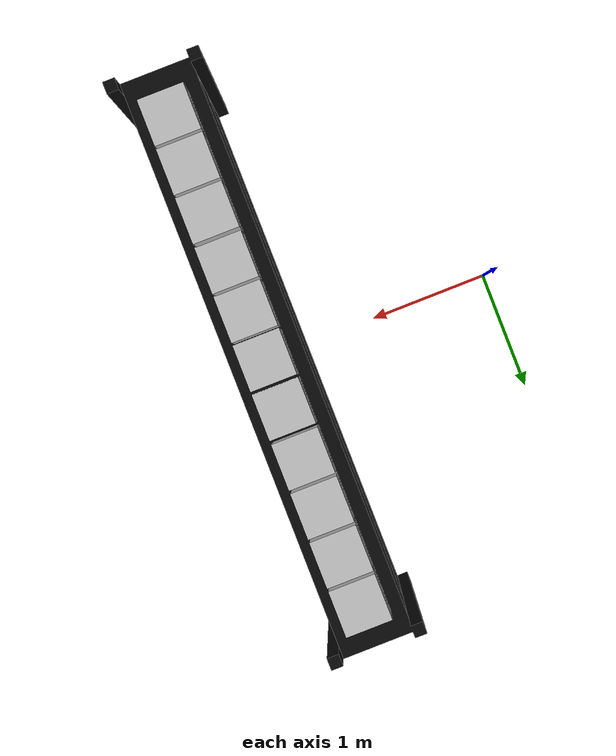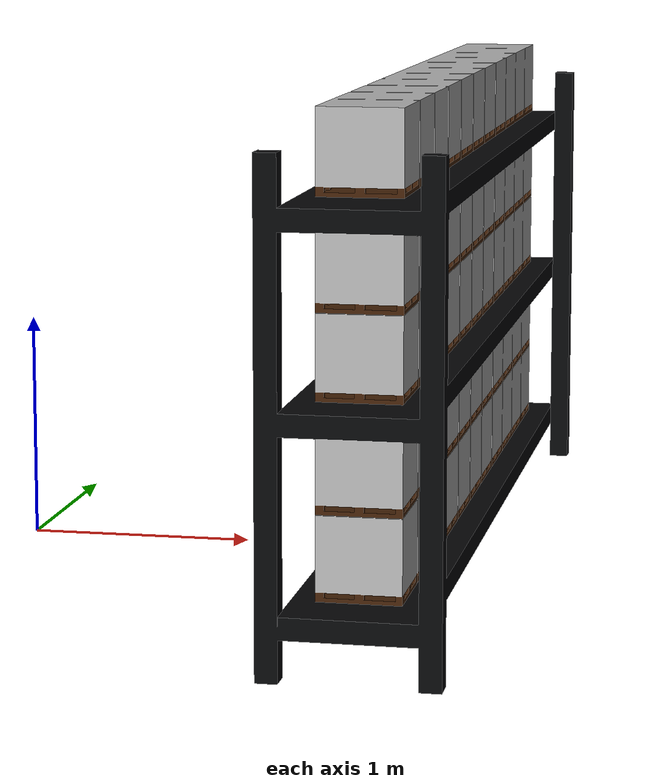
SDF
<?xml version='1.0'?>
<sdf version='1.8'>
  <model name='rack'>
    <static>1</static>
    <link name="link">
      <visual name="visual">
        <cast_shadows>false</cast_shadows>
        <geometry>
          <mesh>
            <uri>model://rack/meshes/rack.dae</uri>
          </mesh>
        </geometry>
      </visual>
    </link>
  </model>
</sdf>
